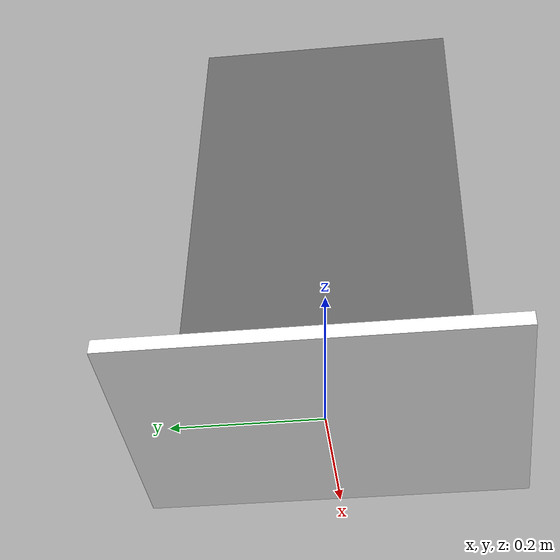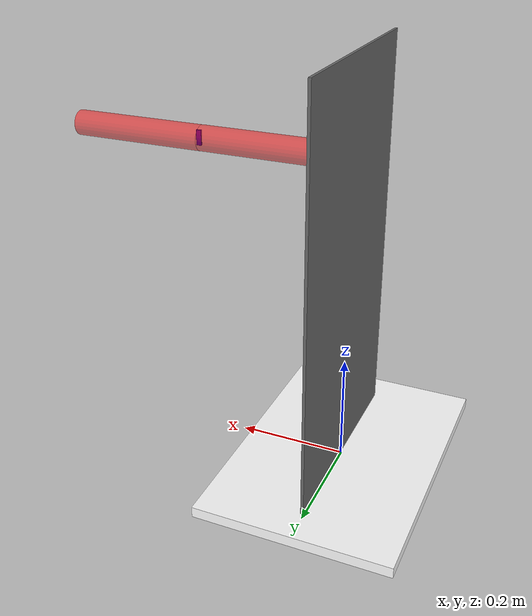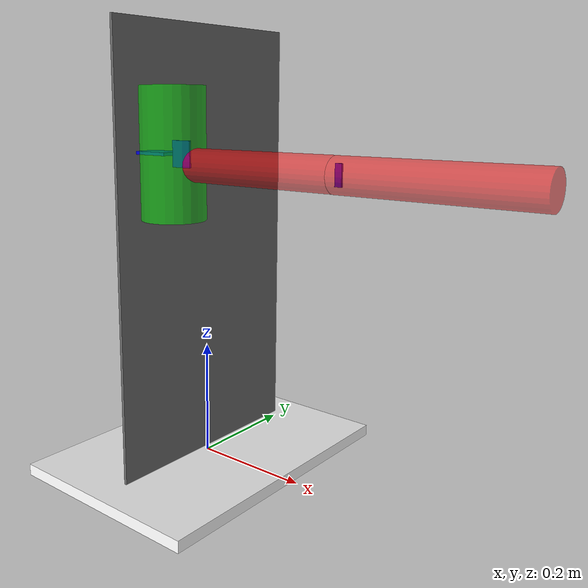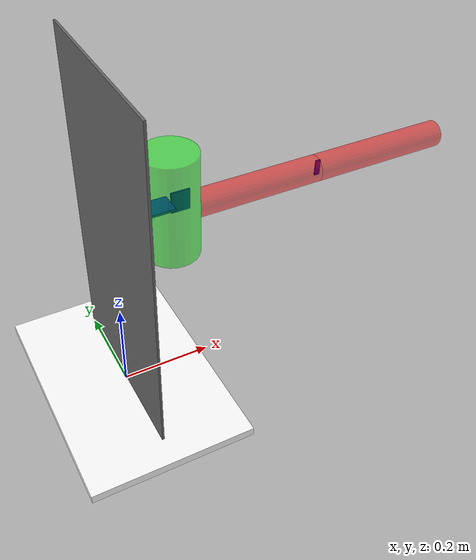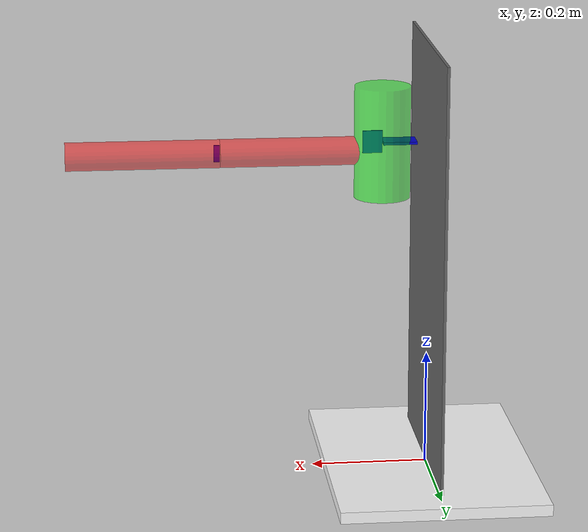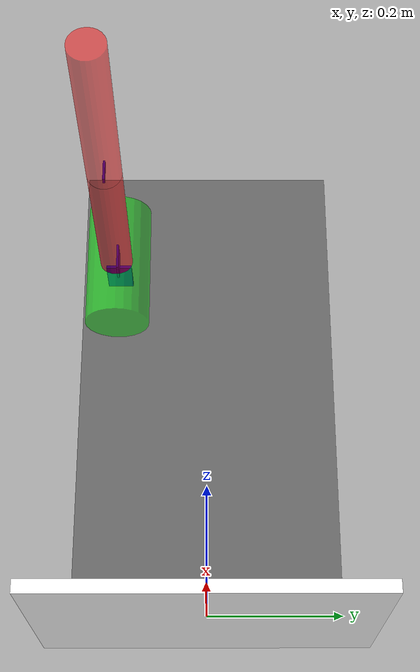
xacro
<?xml version="1.0"?>

<!-- XML namespaces -->
<robot xmlns:sensor="http://playerstage.sourceforge.net/gazebo/xmlschema/#sensor"
       xmlns:controller="http://playerstage.sourceforge.net/gazebo/xmlschema/#controller"
       xmlns:interface="http://playerstage.sourceforge.net/gazebo/xmlschema/#interface"
       xmlns:xacro="http://ros.org/wiki/xacro"
	   name="pi_robot">

	<xacro:macro name="white">
		<material name="white">
			<color rgba="1.0 1.0 1.0 1.0"/>
		</material>
	</xacro:macro>

	<xacro:macro name="black">
		<material name="black">
			<color rgba="0.1 0.1 0.1 1.0"/>
		</material>
	</xacro:macro>

	<xacro:macro name="grey1">
		<material name="grey1">
			<color rgba="0.41 0.41 0.41 1.0"/>
		</material>
	</xacro:macro>

	<xacro:macro name="blue1">
		<material name="blue1">
			<color rgba="0 0 .8 1"/>
		</material>
	</xacro:macro>

	<xacro:macro name="green1">
		<material name="green1">
			<color rgba="0 1 0 0.5"/>
		</material>
	</xacro:macro>

	<xacro:macro name="red1">
	  <material name="red1">
	    <color rgba="1 0 0 0.5"/>
		</material>
	</xacro:macro>

	<xacro:macro name="my_box" params="name lwh xyz rpy mass material *rviz_color">
		<link name="${name}">
			<visual>
				<origin xyz="${xyz}" rpy="${rpy}" />
				<geometry>
					<box size="${lwh}" />
				</geometry>
			    <xacro:insert_block name="rviz_color" />
             </visual>
             <collision>
				<origin xyz="${xyz}" rpy="${rpy}" />
					<geometry>
						<box size="${lwh}" />
					</geometry>
             </collision>
             <xacro:default_inertial mass="${mass}" />
        </link>
        <xacro:default_gazebo name="${name}" material="${material}" />
	</xacro:macro>

	<xacro:macro name="my_cylinder" params="name l r xyz rpy mass material *rviz_color">
		<link name="${name}">
			<visual>
				<origin xyz="${xyz}" rpy="${rpy}" />
				<geometry>
					<cylinder length="${l}" radius="${r}"/>
				</geometry>
				<xacro:insert_block name="rviz_color" />
			</visual>
			<collision>
				<origin xyz="${xyz}" rpy="${rpy}" />
					<geometry>
						<cylinder length="${l}" radius="${r}" />
					</geometry>
			</collision>
			<xacro:default_inertial mass="${mass}" />
		</link>
        <xacro:default_gazebo name="${name}" material="${material}" />
	</xacro:macro>

    <xacro:macro name="default_gazebo" params="name material">
 		<gazebo reference="${name}">
			<material>${material}</material>
			<selfCollide>false</selfCollide>
			<turnGravityOff>true</turnGravityOff>
		</gazebo>
    </xacro:macro>

 	<!-- ============================   Body   ============================ -->

	<xacro:my_box name="base_link" lwh="0.36 0.52 0.02" xyz="0 0 0" rpy="0 0 0" mass="0.5" material="Gazebo/WhiteEmissive">
		<xacro:white />
	</xacro:my_box>

 	<xacro:my_box name="torso_link" lwh="0.005 0.4 0.75" xyz="0 0 0" rpy="0 0 0" mass="0.5" material="Gazebo/WhiteEmissive">
		<xacro:grey1 />
	</xacro:my_box>

	<xacro:my_box name="shoulder_pan_support_link" lwh="0.06 0.04 0.005" xyz="0 0 0" rpy="0 0 0" mass="0.5" material="Gazebo/WhiteEmissive">
		<xacro:blue1 />
	</xacro:my_box>

 	<xacro:my_cylinder name="shoulder_pan_link" l="0.2" r="0.05" xyz="0 0 0" rpy="0 0 0" mass="0.5" material="Gazebo/WhiteEmissive">
		<xacro:green1 />
	</xacro:my_cylinder>

	<xacro:my_box name="shoulder_tilt_support_link" lwh="0.035 0.003 0.04" xyz="0 0 0" rpy="0 0 0" mass="0.5" material="Gazebo/WhiteEmissive">
		<xacro:blue1 />
	</xacro:my_box>

	<xacro:my_box name="shoulder_tilt_link" lwh="0.01 0.003 0.03" xyz="0 0 -0.015" rpy="0 0 0" mass="0.5" material="Gazebo/WhiteEmissive">
		<xacro:red1 />
	</xacro:my_box>

	<xacro:my_cylinder name="upper_arm_link" l="0.27" r="0.025" xyz="0.135 0 0" rpy="0 1.57 0" mass="0.5" material="Gazebo/WhiteEmissive">
		<xacro:red1 />
	</xacro:my_cylinder>

	<xacro:my_box name="elbow_tilt_link" lwh="0.01 0.003 0.03" xyz="0.005 0 0" rpy="0 0 0" mass="0.5" material="Gazebo/WhiteEmissive">
		<xacro:blue1 />
	</xacro:my_box>

	<xacro:my_cylinder name="forearm_link" l="0.27" r="0.025" xyz="0.135 0 0" rpy="0 1.57 0" mass="0.5" material="Gazebo/WhiteEmissive">
		<xacro:red1 />
	</xacro:my_cylinder>
 	<!-- ============================   Arms   ============================ -->

	<!-- =================== Joint Definitions ==================== -->
	<joint name="forearm_roll_joint" type="revolute">
	  <parent link="elbow_tilt_link" />
	  <child link="forearm_link" />
	  <axis xyz="0.135 0 0"/>
	  <origin xyz="0 0 0" rpy="0 0 0" />
	  <limit lower="-1.0" upper="1.0" effort="1.0" velocity="1.0" />
	</joint>

	<joint name="elbow_tilt_joint" type="revolute">
	  <parent link="upper_arm_link" />
	  <child link="elbow_tilt_link" />
	  <axis xyz="0 1 0"/>
	  <origin xyz="0.27 0 0" rpy="0 0 0" />
	  <limit lower="-1.0" upper="1.0" effort="1.0" velocity="1.0" />
	</joint>

	<joint name="upper_arm_roll_joint" type="revolute">
	  <parent link="shoulder_tilt_link" />
	  <child link="upper_arm_link" />
	  <axis xyz="0.135 0 0"/>
	  <origin xyz="0 0 0" rpy="0 0 0" />
	  <limit lower="-1.0" upper="1.0" effort="1.0" velocity="1.0" />
	</joint>

	<joint name="shoulder_tilt_joint" type="revolute">
	  <parent link="shoulder_tilt_support_link" />
	  <child link="shoulder_tilt_link" />
	  <axis xyz="0 1 0"/>
	  <origin xyz="0 0 -0.015" rpy="0 0 0" />
	  <limit lower="-1.0" upper="1.0" effort="1.0" velocity="1.0" />
	</joint>

	<joint name="shoulder_tilt_support_joint" type="fixed">
	  <parent link="shoulder_pan_link" />
	  <child link="shoulder_tilt_support_link" />
	  <origin xyz="0.0175 0.0 0" rpy="0 0 0" />
	</joint>

	<joint name="shoulder_pan_joint" type="revolute">
	  <parent link="shoulder_pan_support_link" />
	  <child link="shoulder_pan_link" />
	  <axis xyz="0.0 0 1"/>
	  <origin xyz="0.03 0 0" rpy="0 0 0" />
	  <limit lower="-1.0" upper="1.0" effort="1.0" velocity="1.0" />
	</joint>

	<joint name="shoulder_pan_support_joint" type="fixed">
	  <parent link="torso_link" />
	  <child link="shoulder_pan_support_link" />
	  <origin xyz="0.0325 -0.14 0.173" rpy="0 0 0" />
	</joint>

	<joint name="torso_joint" type="fixed">
	  <parent link="base_link" />
	  <child link="torso_link" />
	  <origin xyz="0 0 0.375" rpy="0 0 0" />
	</joint>

	<gazebo reference="maggie">
  	</gazebo>
</robot>
